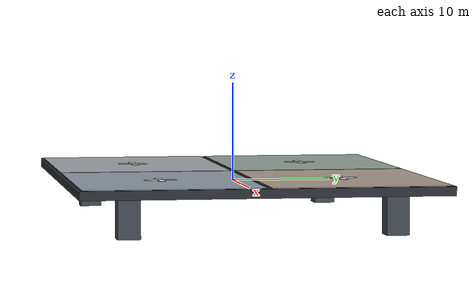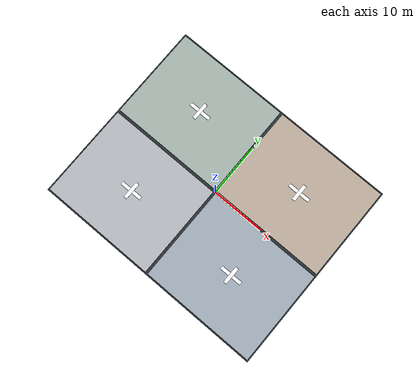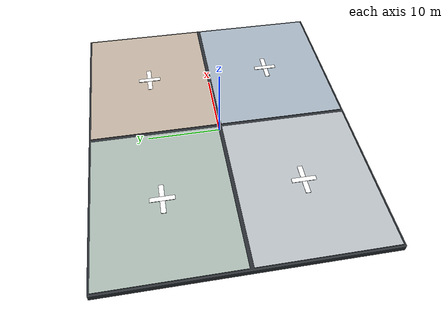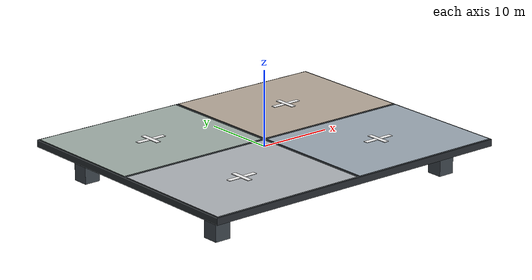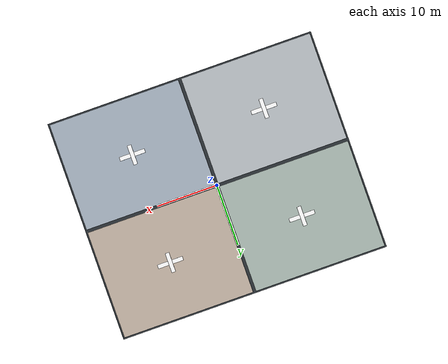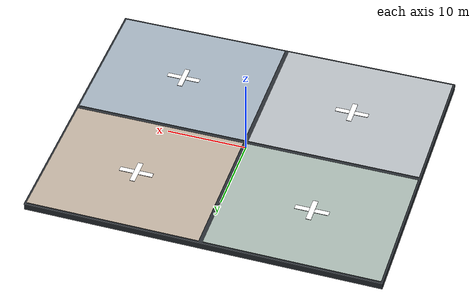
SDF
<?xml version="1.0"?>
<sdf version="1.10">
  <model name="quad_uav_platform">
    <static>true</static>
    <link name="platform">
      <collision name="support_collision_1"><pose>-18 -13 -2 0 0 0</pose><geometry><box><size>2.2 2.2 4</size></box></geometry></collision>
      <collision name="support_collision_2"><pose>18 -13 -2 0 0 0</pose><geometry><box><size>2.2 2.2 4</size></box></geometry></collision>
      <collision name="support_collision_3"><pose>-18 13 -2 0 0 0</pose><geometry><box><size>2.2 2.2 4</size></box></geometry></collision>
      <collision name="support_collision_4"><pose>18 13 -2 0 0 0</pose><geometry><box><size>2.2 2.2 4</size></box></geometry></collision>
      <visual name="support_1"><pose>-18 -13 -2 0 0 0</pose><geometry><box><size>2.2 2.2 4</size></box></geometry><material><ambient>0.12 0.13 0.14 1</ambient><diffuse>0.24 0.27 0.30 1</diffuse></material></visual>
      <visual name="support_2"><pose>18 -13 -2 0 0 0</pose><geometry><box><size>2.2 2.2 4</size></box></geometry><material><ambient>0.12 0.13 0.14 1</ambient><diffuse>0.24 0.27 0.30 1</diffuse></material></visual>
      <visual name="support_3"><pose>-18 13 -2 0 0 0</pose><geometry><box><size>2.2 2.2 4</size></box></geometry><material><ambient>0.12 0.13 0.14 1</ambient><diffuse>0.24 0.27 0.30 1</diffuse></material></visual>
      <visual name="support_4"><pose>18 13 -2 0 0 0</pose><geometry><box><size>2.2 2.2 4</size></box></geometry><material><ambient>0.12 0.13 0.14 1</ambient><diffuse>0.24 0.27 0.30 1</diffuse></material></visual>
      <collision name="platform_collision">
        <pose>0 0 0.45 0 0 0</pose>
        <geometry><box><size>44 36 0.9</size></box></geometry>
      </collision>
      <visual name="platform_base">
        <pose>0 0 0.45 0 0 0</pose>
        <geometry><box><size>44 36 0.9</size></box></geometry>
        <material><ambient>0.08 0.09 0.10 1</ambient><diffuse>0.16 0.18 0.20 1</diffuse><specular>0.3 0.3 0.3 1</specular></material>
      </visual>
      <visual name="pad_1"><pose>-11 -9 0.94 0 0 0</pose><geometry><box><size>21.5 17.5 0.08</size></box></geometry><material><ambient>0.48 0.50 0.52 1</ambient><diffuse>0.72 0.74 0.76 1</diffuse></material></visual>
      <visual name="pad_2"><pose>11 -9 0.94 0 0 0</pose><geometry><box><size>21.5 17.5 0.08</size></box></geometry><material><ambient>0.42 0.46 0.50 1</ambient><diffuse>0.64 0.69 0.74 1</diffuse></material></visual>
      <visual name="pad_3"><pose>-11 9 0.94 0 0 0</pose><geometry><box><size>21.5 17.5 0.08</size></box></geometry><material><ambient>0.44 0.48 0.46 1</ambient><diffuse>0.66 0.72 0.69 1</diffuse></material></visual>
      <visual name="pad_4"><pose>11 9 0.94 0 0 0</pose><geometry><box><size>21.5 17.5 0.08</size></box></geometry><material><ambient>0.50 0.46 0.42 1</ambient><diffuse>0.75 0.69 0.63 1</diffuse></material></visual>
      <visual name="h1a"><pose>-11 -9 1.00 0 0 0</pose><geometry><box><size>4.2 0.65 0.06</size></box></geometry><material><ambient>1 1 1 1</ambient><diffuse>1 1 1 1</diffuse></material></visual>
      <visual name="h1b"><pose>-11 -9 1.01 0 0 1.5708</pose><geometry><box><size>3.2 0.65 0.06</size></box></geometry><material><ambient>1 1 1 1</ambient><diffuse>1 1 1 1</diffuse></material></visual>
      <visual name="h2a"><pose>11 -9 1.00 0 0 0</pose><geometry><box><size>4.2 0.65 0.06</size></box></geometry><material><ambient>1 1 1 1</ambient><diffuse>1 1 1 1</diffuse></material></visual>
      <visual name="h2b"><pose>11 -9 1.01 0 0 1.5708</pose><geometry><box><size>3.2 0.65 0.06</size></box></geometry><material><ambient>1 1 1 1</ambient><diffuse>1 1 1 1</diffuse></material></visual>
      <visual name="h3a"><pose>-11 9 1.00 0 0 0</pose><geometry><box><size>4.2 0.65 0.06</size></box></geometry><material><ambient>1 1 1 1</ambient><diffuse>1 1 1 1</diffuse></material></visual>
      <visual name="h3b"><pose>-11 9 1.01 0 0 1.5708</pose><geometry><box><size>3.2 0.65 0.06</size></box></geometry><material><ambient>1 1 1 1</ambient><diffuse>1 1 1 1</diffuse></material></visual>
      <visual name="h4a"><pose>11 9 1.00 0 0 0</pose><geometry><box><size>4.2 0.65 0.06</size></box></geometry><material><ambient>1 1 1 1</ambient><diffuse>1 1 1 1</diffuse></material></visual>
      <visual name="h4b"><pose>11 9 1.01 0 0 1.5708</pose><geometry><box><size>3.2 0.65 0.06</size></box></geometry><material><ambient>1 1 1 1</ambient><diffuse>1 1 1 1</diffuse></material></visual>
    </link>
  </model>
</sdf>
